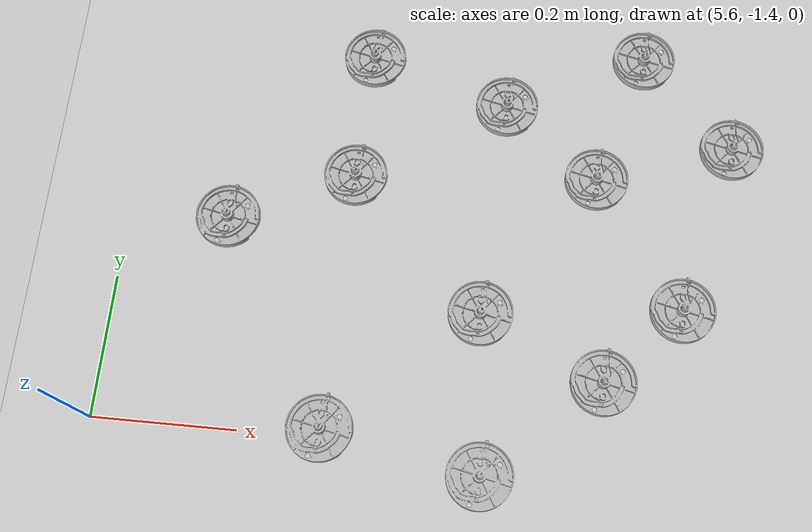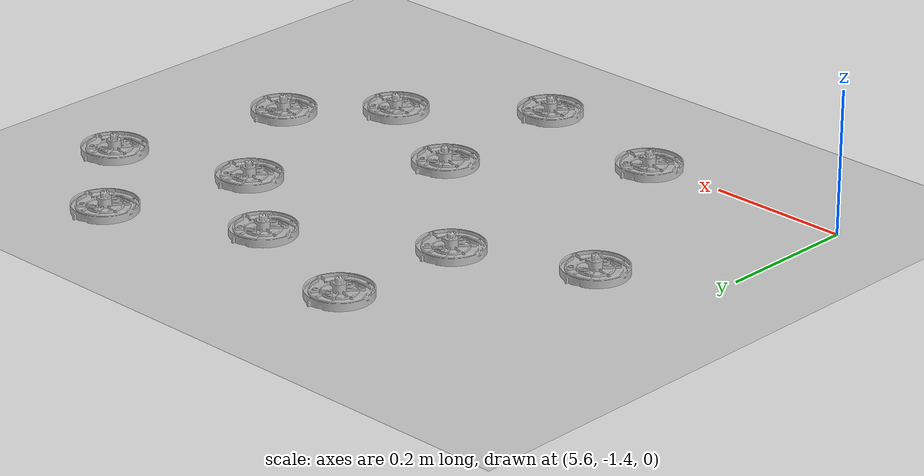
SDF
<sdf version="1.7">
 <world name="default">
  <model name="ground_plane">
   <static>1</static>
   <link name="link">
    <collision name="collision">
     <geometry><plane><normal>0 0 1</normal><size>100 100</size></plane></geometry>
     <surface><friction><ode><mu>100</mu><mu2>50</mu2></ode></friction></surface>
    </collision>
    <visual name="visual">
     <cast_shadows>0</cast_shadows>
     <geometry><plane><normal>0 0 1</normal><size>100 100</size></plane></geometry>
     <material>
      <script><uri>file://media/materials/scripts/gazebo.material</uri><name>Gazebo/Grey</name></script>
     </material>
    </visual>
   </link>
  </model>
  <model name="HV8_2">
   <pose>6.26765 -0.994227 -1.8e-05 0.000274 0.000329 0.001492</pose>
   <static>0</static>
   <link name="HV8">
    <inertial>
     <mass>0.05</mass>
     <inertia><ixx>0.0002</ixx><ixy>0</ixy><ixz>0</ixz><iyy>0.0002</iyy><iyz>0</iyz><izz>0.0002</izz></inertia>
    </inertial>
    <collision name="collishin">
     <geometry><mesh><uri>model://HV8/meshes/HV8_1.stl</uri></mesh></geometry>
    </collision>
    <visual name="visual"><geometry><mesh><uri>model://HV8/meshes/HV8_1.stl</uri></mesh></geometry></visual>
   </link>
  </model>
  <model name="HV8_3">
   <pose>6.13022 -0.889485 -3e-06 -0.000159 7.4e-05 0.001491</pose>
   <static>0</static>
   <link name="HV8">
    <inertial>
     <mass>0.05</mass>
     <inertia><ixx>0.0002</ixx><ixy>0</ixy><ixz>0</ixz><iyy>0.0002</iyy><iyz>0</iyz><izz>0.0002</izz></inertia>
    </inertial>
    <collision name="collishin">
     <geometry><mesh><uri>model://HV8/meshes/HV8_1.stl</uri></mesh></geometry>
    </collision>
    <visual name="visual"><geometry><mesh><uri>model://HV8/meshes/HV8_1.stl</uri></mesh></geometry></visual>
   </link>
  </model>
  <model name="HV8_5">
   <pose>5.92708 -0.826867 -3e-06 -0.000159 7.4e-05 0.001491</pose>
   <static>0</static>
   <link name="HV8">
    <inertial>
     <mass>0.05</mass>
     <inertia><ixx>0.0002</ixx><ixy>0</ixy><ixz>0</ixz><iyy>0.0002</iyy><iyz>0</iyz><izz>0.0002</izz></inertia>
    </inertial>
    <collision name="collishin">
     <geometry><mesh><uri>model://HV8/meshes/HV8_1.stl</uri></mesh></geometry>
    </collision>
    <visual name="visual"><geometry><mesh><uri>model://HV8/meshes/HV8_1.stl</uri></mesh></geometry></visual>
   </link>
  </model>
  <model name="HV8_6">
   <pose>5.91893 -1.01798 -3e-06 -0.000159 7.4e-05 0.00175</pose>
   <static>0</static>
   <link name="HV8">
    <inertial>
     <mass>0.05</mass>
     <inertia><ixx>0.0002</ixx><ixy>0</ixy><ixz>0</ixz><iyy>0.0002</iyy><iyz>0</iyz><izz>0.0002</izz></inertia>
    </inertial>
    <collision name="collishin">
     <geometry><mesh><uri>model://HV8/meshes/HV8_1.stl</uri></mesh></geometry>
    </collision>
    <visual name="visual"><geometry><mesh><uri>model://HV8/meshes/HV8_1.stl</uri></mesh></geometry></visual>
   </link>
  </model>
  <model name="HV8_8">
   <pose>6.11558 -1.20913 -1.8e-05 0.000274 0.000329 0.001489</pose>
   <static>0</static>
   <link name="HV8">
    <inertial>
     <mass>0.05</mass>
     <inertia><ixx>0.0002</ixx><ixy>0</ixy><ixz>0</ixz><iyy>0.0002</iyy><iyz>0</iyz><izz>0.0002</izz></inertia>
    </inertial>
    <collision name="collishin">
     <geometry><mesh><uri>model://HV8/meshes/HV8_1.stl</uri></mesh></geometry>
    </collision>
    <visual name="visual"><geometry><mesh><uri>model://HV8/meshes/HV8_1.stl</uri></mesh></geometry></visual>
   </link>
  </model>
  <model name="HV8_9">
   <pose>5.74372 -1.09752 -1.8e-05 0.000274 0.000329 0.001486</pose>
   <static>0</static>
   <link name="HV8">
    <inertial>
     <mass>0.05</mass>
     <inertia><ixx>0.0002</ixx><ixy>0</ixy><ixz>0</ixz><iyy>0.0002</iyy><iyz>0</iyz><izz>0.0002</izz></inertia>
    </inertial>
    <collision name="collishin">
     <geometry><mesh><uri>model://HV8/meshes/HV8_1.stl</uri></mesh></geometry>
    </collision>
    <visual name="visual"><geometry><mesh><uri>model://HV8/meshes/HV8_1.stl</uri></mesh></geometry></visual>
   </link>
  </model>
  <model name="HV8_11">
   <pose>5.91173 -1.3879 -1.8e-05 0.000274 0.000329 0.001488</pose>
   <static>0</static>
   <link name="HV8">
    <inertial>
     <mass>0.05</mass>
     <inertia><ixx>0.0002</ixx><ixy>0</ixy><ixz>0</ixz><iyy>0.0002</iyy><iyz>0</iyz><izz>0.0002</izz></inertia>
    </inertial>
    <collision name="collishin">
     <geometry><mesh><uri>model://HV8/meshes/HV8_1.stl</uri></mesh></geometry>
    </collision>
    <visual name="visual"><geometry><mesh><uri>model://HV8/meshes/HV8_1.stl</uri></mesh></geometry></visual>
   </link>
  </model>
  <model name="HV8_14">
   <pose>6.32996 -0.795649 3e-06 -0.000164 -2.7e-05 0.001485</pose>
   <static>0</static>
   <link name="HV8">
    <inertial>
     <mass>0.05</mass>
     <inertia><ixx>0.0002</ixx><ixy>0</ixy><ixz>0</ixz><iyy>0.0002</iyy><iyz>0</iyz><izz>0.0002</izz></inertia>
    </inertial>
    <collision name="collishin">
     <geometry><mesh><uri>model://HV8/meshes/HV8_1.stl</uri></mesh></geometry>
    </collision>
    <visual name="visual"><geometry><mesh><uri>model://HV8/meshes/HV8_1.stl</uri></mesh></geometry></visual>
   </link>
  </model>
  <model name="HV8_15">
   <pose>6.46268 -0.929956 3e-06 -0.000164 -2.7e-05 0.001486</pose>
   <static>0</static>
   <link name="HV8">
    <inertial>
     <mass>0.05</mass>
     <inertia><ixx>0.0002</ixx><ixy>0</ixy><ixz>0</ixz><iyy>0.0002</iyy><iyz>0</iyz><izz>0.0002</izz></inertia>
    </inertial>
    <collision name="collishin">
     <geometry><mesh><uri>model://HV8/meshes/HV8_1.stl</uri></mesh></geometry>
    </collision>
    <visual name="visual"><geometry><mesh><uri>model://HV8/meshes/HV8_1.stl</uri></mesh></geometry></visual>
   </link>
  </model>
  <model name="HV8_25">
   <pose>6.39649 -1.1805 3e-06 -0.000164 -2.7e-05 0.001481</pose>
   <static>0</static>
   <link name="HV8">
    <inertial>
     <mass>0.05</mass>
     <inertia><ixx>0.0002</ixx><ixy>0</ixy><ixz>0</ixz><iyy>0.0002</iyy><iyz>0</iyz><izz>0.0002</izz></inertia>
    </inertial>
    <collision name="collishin">
     <geometry><mesh><uri>model://HV8/meshes/HV8_1.stl</uri></mesh></geometry>
    </collision>
    <visual name="visual"><geometry><mesh><uri>model://HV8/meshes/HV8_1.stl</uri></mesh></geometry></visual>
   </link>
  </model>
  <model name="HV8_26">
   <pose>6.29062 -1.29209 -3e-06 -0.000159 7.4e-05 0.001483</pose>
   <static>0</static>
   <link name="HV8">
    <inertial>
     <mass>0.05</mass>
     <inertia><ixx>0.0002</ixx><ixy>0</ixy><ixz>0</ixz><iyy>0.0002</iyy><iyz>0</iyz><izz>0.0002</izz></inertia>
    </inertial>
    <collision name="collishin">
     <geometry><mesh><uri>model://HV8/meshes/HV8_1.stl</uri></mesh></geometry>
    </collision>
    <visual name="visual"><geometry><mesh><uri>model://HV8/meshes/HV8_1.stl</uri></mesh></geometry></visual>
   </link>
  </model>
  <model name="HV8_27">
   <pose>6.13187 -1.43263 -1.8e-05 0.000274 0.000329 0.001481</pose>
   <static>0</static>
   <link name="HV8">
    <inertial>
     <mass>0.05</mass>
     <inertia><ixx>0.0002</ixx><ixy>0</ixy><ixz>0</ixz><iyy>0.0002</iyy><iyz>0</iyz><izz>0.0002</izz></inertia>
    </inertial>
    <collision name="collishin">
     <geometry><mesh><uri>model://HV8/meshes/HV8_1.stl</uri></mesh></geometry>
    </collision>
    <visual name="visual"><geometry><mesh><uri>model://HV8/meshes/HV8_1.stl</uri></mesh></geometry></visual>
   </link>
  </model>
 </world>
</sdf>
